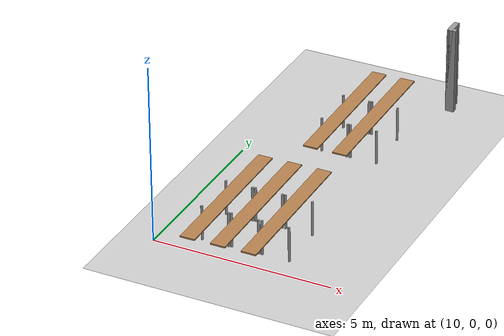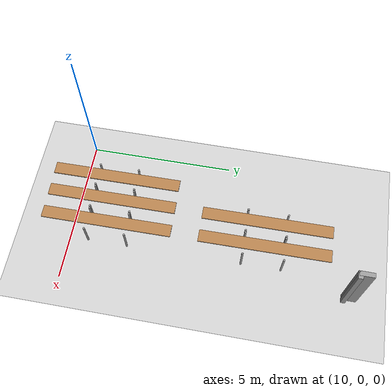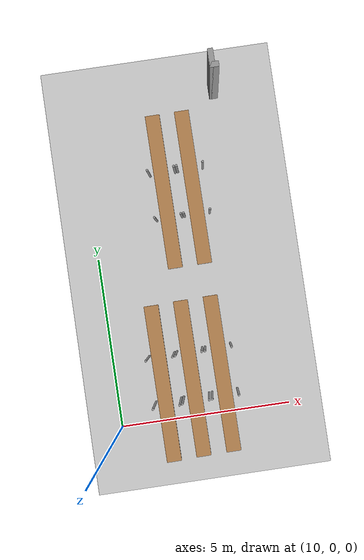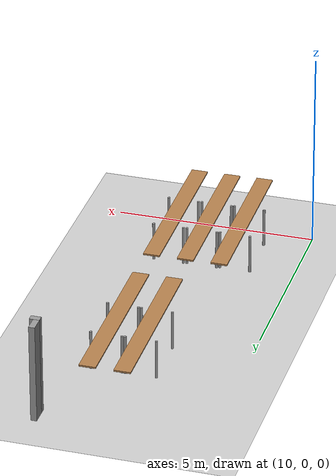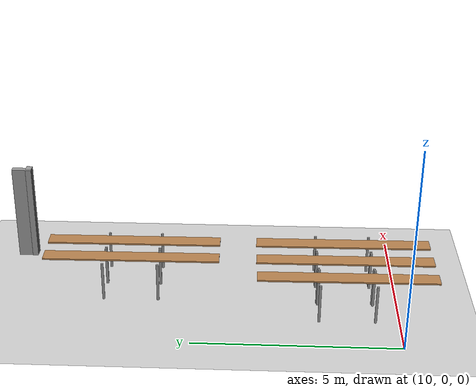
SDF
<sdf version="1.6">
 <world name="default">
  <model name="ground_plane">
   <static>1</static>
   <link name="link">
    <collision name="collision">
     <geometry><plane><normal>0 0 1</normal><size>100 100</size></plane></geometry>
     <surface><friction><ode><mu>100</mu><mu2>50</mu2></ode></friction></surface>
    </collision>
    <visual name="visual">
     <cast_shadows>0</cast_shadows>
     <geometry><plane><normal>0 0 1</normal><size>100 100</size></plane></geometry>
     <material>
      <script><uri>file://media/materials/scripts/gazebo.material</uri><name>Gazebo/Grey</name></script>
     </material>
    </visual>
   </link>
  </model>
  <model name="Parte_DX_(visione_alta_mappa)_CV1">
   <pose>7.84951 -6.02799 0 0 -0 0</pose>
   <link name="Wall_25">
    <collision name="Wall_25_Collision">
     <geometry><box><size>0.25 0.15 2.5</size></box></geometry>
     <pose>0 0 1.25 0 -0 0</pose>
    </collision>
    <visual name="Wall_25_Visual">
     <pose>0 0 1.25 0 -0 0</pose>
     <geometry><box><size>0.25 0.15 2.5</size></box></geometry>
     <material>
      <script><uri>file://media/materials/scripts/gazebo.material</uri><name>Gazebo/Grey</name></script>
      <ambient>1 1 1 1</ambient>
     </material>
    </visual>
    <pose>6.26785 15.4522 0 0 -0 3.14159</pose>
   </link>
   <link name="Wall_27">
    <collision name="Wall_27_Collision">
     <geometry><box><size>0.5 0.15 2.5</size></box></geometry>
     <pose>0 0 1.25 0 -0 0</pose>
    </collision>
    <visual name="Wall_27_Visual">
     <pose>0 0 1.25 0 -0 0</pose>
     <geometry><box><size>0.5 0.15 2.5</size></box></geometry>
     <material>
      <script><uri>file://media/materials/scripts/gazebo.material</uri><name>Gazebo/Grey</name></script>
      <ambient>1 1 1 1</ambient>
     </material>
    </visual>
    <pose>6.21785 15.6272 0 0 -0 1.5708</pose>
   </link>
   <static>1</static>
  </model>
  <model name="tablesclass_clone_15">
   <link name="link">
    <inertial>
     <inertia><ixx>0</ixx><ixy>0</ixy><ixz>0</ixz><iyy>0</iyy><iyz>0</iyz><izz>0</izz></inertia>
     <mass>1.73923</mass>
    </inertial>
    <visual name="front_right_leg">
     <pose>0.68 -0.38 0.5 0 -0 0</pose>
     <geometry><cylinder><radius>0.0324505</radius><length>1</length></cylinder></geometry>
     <material>
      <script><uri>file://media/materials/scripts/gazebo.material</uri><name>Gazebo/Grey</name></script>
      <ambient>0.3 0.3 0.3 1</ambient>
      <diffuse>0.7 0.7 0.7 1</diffuse>
      <specular>0.01 0.01 0.01 1</specular>
      <emissive>0 0 0 1</emissive>
     </material>
    </visual>
    <visual name="back_left_leg">
     <pose>-0.68 0.38 0.5 0 -0 0</pose>
     <geometry><cylinder><radius>0.0324505</radius><length>1</length></cylinder></geometry>
     <material>
      <script><uri>file://media/materials/scripts/gazebo.material</uri><name>Gazebo/Grey</name></script>
      <ambient>0.3 0.3 0.3 1</ambient>
      <diffuse>0.7 0.7 0.7 1</diffuse>
      <specular>0.01 0.01 0.01 1</specular>
      <emissive>0 0 0 1</emissive>
     </material>
    </visual>
    <visual name="front_left_leg">
     <pose>0.68 0.38 0.5 0 -0 0</pose>
     <geometry><cylinder><radius>0.0324505</radius><length>1</length></cylinder></geometry>
     <material>
      <script><uri>file://media/materials/scripts/gazebo.material</uri><name>Gazebo/Grey</name></script>
      <ambient>0.3 0.3 0.3 1</ambient>
      <diffuse>0.7 0.7 0.7 1</diffuse>
      <specular>0.01 0.01 0.01 1</specular>
      <emissive>0 0 0 1</emissive>
     </material>
    </visual>
    <visual name="visual1">
     <pose>0 0 1 0 -0 0</pose>
     <geometry><box><size>4.38513 0.412326 0.04</size></box></geometry>
     <material>
      <script><uri>file://media/materials/scripts/gazebo.material</uri><name>Gazebo/Wood</name></script>
      <ambient>1 1 1 1</ambient>
      <diffuse>1 1 1 1</diffuse>
      <specular>0.2 0.2 0.2 1</specular>
      <emissive>0 0 0 1</emissive>
     </material>
    </visual>
    <visual name="back_right_leg">
     <pose>-0.68 -0.38 0.5 0 -0 0</pose>
     <geometry><cylinder><radius>0.0324505</radius><length>1</length></cylinder></geometry>
     <material>
      <script><uri>file://media/materials/scripts/gazebo.material</uri><name>Gazebo/Grey</name></script>
      <ambient>0.3 0.3 0.3 1</ambient>
      <diffuse>0.7 0.7 0.7 1</diffuse>
      <specular>0.01 0.01 0.01 1</specular>
      <emissive>0 0 0 1</emissive>
     </material>
    </visual>
    <collision name="front_left_leg">
     <pose>0.68 0.38 0.5 0 -0 0</pose>
     <geometry><cylinder><radius>0.03245</radius><length>1</length></cylinder></geometry>
     <surface>
      <friction>
       <ode><mu>1</mu><mu2>1</mu2><fdir1>0 0 0</fdir1><slip1>0</slip1><slip2>0</slip2></ode>
       <torsional>
        <coefficient>1</coefficient>
        <patch_radius>0</patch_radius>
        <surface_radius>0</surface_radius>
        <use_patch_radius>1</use_patch_radius>
        <ode><slip>0</slip></ode>
       </torsional>
      </friction>
      <bounce><restitution_coefficient>0</restitution_coefficient><threshold>1e+06</threshold></bounce>
      <contact>
       <collide_without_contact>0</collide_without_contact>
       <collide_without_contact_bitmask>1</collide_without_contact_bitmask>
       <collide_bitmask>1</collide_bitmask>
       <ode>
        <soft_cfm>0</soft_cfm>
        <soft_erp>0.2</soft_erp>
        <kp>1e+13</kp>
        <kd>1</kd>
        <max_vel>0.01</max_vel>
        <min_depth>0</min_depth>
       </ode>
       <bullet>
        <split_impulse>1</split_impulse>
        <split_impulse_penetration_threshold>-0.01</split_impulse_penetration_threshold>
        <soft_cfm>0</soft_cfm>
        <soft_erp>0.2</soft_erp>
        <kp>1e+13</kp>
        <kd>1</kd>
       </bullet>
      </contact>
     </surface>
    </collision>
    <collision name="front_right_leg">
     <pose>0.68 -0.38 0.5 0 -0 0</pose>
     <geometry><cylinder><radius>0.03245</radius><length>1</length></cylinder></geometry>
     <surface>
      <friction>
       <ode><mu>1</mu><mu2>1</mu2><fdir1>0 0 0</fdir1><slip1>0</slip1><slip2>0</slip2></ode>
       <torsional>
        <coefficient>1</coefficient>
        <patch_radius>0</patch_radius>
        <surface_radius>0</surface_radius>
        <use_patch_radius>1</use_patch_radius>
        <ode><slip>0</slip></ode>
       </torsional>
      </friction>
      <bounce><restitution_coefficient>0</restitution_coefficient><threshold>1e+06</threshold></bounce>
      <contact>
       <collide_without_contact>0</collide_without_contact>
       <collide_without_contact_bitmask>1</collide_without_contact_bitmask>
       <collide_bitmask>1</collide_bitmask>
       <ode>
        <soft_cfm>0</soft_cfm>
        <soft_erp>0.2</soft_erp>
        <kp>1e+13</kp>
        <kd>1</kd>
        <max_vel>0.01</max_vel>
        <min_depth>0</min_depth>
       </ode>
       <bullet>
        <split_impulse>1</split_impulse>
        <split_impulse_penetration_threshold>-0.01</split_impulse_penetration_threshold>
        <soft_cfm>0</soft_cfm>
        <soft_erp>0.2</soft_erp>
        <kp>1e+13</kp>
        <kd>1</kd>
       </bullet>
      </contact>
     </surface>
    </collision>
    <collision name="back_left_leg">
     <pose>-0.68 0.38 0.5 0 -0 0</pose>
     <geometry><cylinder><radius>0.03245</radius><length>1</length></cylinder></geometry>
     <surface>
      <friction>
       <ode><mu>1</mu><mu2>1</mu2><fdir1>0 0 0</fdir1><slip1>0</slip1><slip2>0</slip2></ode>
       <torsional>
        <coefficient>1</coefficient>
        <patch_radius>0</patch_radius>
        <surface_radius>0</surface_radius>
        <use_patch_radius>1</use_patch_radius>
        <ode><slip>0</slip></ode>
       </torsional>
      </friction>
      <bounce><restitution_coefficient>0</restitution_coefficient><threshold>1e+06</threshold></bounce>
      <contact>
       <collide_without_contact>0</collide_without_contact>
       <collide_without_contact_bitmask>1</collide_without_contact_bitmask>
       <collide_bitmask>1</collide_bitmask>
       <ode>
        <soft_cfm>0</soft_cfm>
        <soft_erp>0.2</soft_erp>
        <kp>1e+13</kp>
        <kd>1</kd>
        <max_vel>0.01</max_vel>
        <min_depth>0</min_depth>
       </ode>
       <bullet>
        <split_impulse>1</split_impulse>
        <split_impulse_penetration_threshold>-0.01</split_impulse_penetration_threshold>
        <soft_cfm>0</soft_cfm>
        <soft_erp>0.2</soft_erp>
        <kp>1e+13</kp>
        <kd>1</kd>
       </bullet>
      </contact>
     </surface>
    </collision>
    <collision name="back_right_leg">
     <pose>-0.68 -0.38 0.5 0 -0 0</pose>
     <geometry><cylinder><radius>0.03245</radius><length>1</length></cylinder></geometry>
     <surface>
      <friction>
       <ode><mu>1</mu><mu2>1</mu2><fdir1>0 0 0</fdir1><slip1>0</slip1><slip2>0</slip2></ode>
       <torsional>
        <coefficient>1</coefficient>
        <patch_radius>0</patch_radius>
        <surface_radius>0</surface_radius>
        <use_patch_radius>1</use_patch_radius>
        <ode><slip>0</slip></ode>
       </torsional>
      </friction>
      <bounce><restitution_coefficient>0</restitution_coefficient><threshold>1e+06</threshold></bounce>
      <contact>
       <collide_without_contact>0</collide_without_contact>
       <collide_without_contact_bitmask>1</collide_without_contact_bitmask>
       <collide_bitmask>1</collide_bitmask>
       <ode>
        <soft_cfm>0</soft_cfm>
        <soft_erp>0.2</soft_erp>
        <kp>1e+13</kp>
        <kd>1</kd>
        <max_vel>0.01</max_vel>
        <min_depth>0</min_depth>
       </ode>
       <bullet>
        <split_impulse>1</split_impulse>
        <split_impulse_penetration_threshold>-0.01</split_impulse_penetration_threshold>
        <soft_cfm>0</soft_cfm>
        <soft_erp>0.2</soft_erp>
        <kp>1e+13</kp>
        <kd>1</kd>
       </bullet>
      </contact>
     </surface>
    </collision>
    <collision name="surface">
     <pose>0 0 1 0 -0 0</pose>
     <geometry><box><size>4.69836 0.412326 0.03</size></box></geometry>
     <surface>
      <friction>
       <ode><mu>0.6</mu><mu2>0.6</mu2><fdir1>0 0 0</fdir1><slip1>0</slip1><slip2>0</slip2></ode>
       <torsional>
        <coefficient>1</coefficient>
        <patch_radius>0</patch_radius>
        <surface_radius>0</surface_radius>
        <use_patch_radius>1</use_patch_radius>
        <ode><slip>0</slip></ode>
       </torsional>
      </friction>
      <bounce><restitution_coefficient>0</restitution_coefficient><threshold>1e+06</threshold></bounce>
      <contact>
       <collide_without_contact>0</collide_without_contact>
       <collide_without_contact_bitmask>1</collide_without_contact_bitmask>
       <collide_bitmask>1</collide_bitmask>
       <ode>
        <soft_cfm>0</soft_cfm>
        <soft_erp>0.2</soft_erp>
        <kp>1e+13</kp>
        <kd>1</kd>
        <max_vel>0.01</max_vel>
        <min_depth>0</min_depth>
       </ode>
       <bullet>
        <split_impulse>1</split_impulse>
        <split_impulse_penetration_threshold>-0.01</split_impulse_penetration_threshold>
        <soft_cfm>0</soft_cfm>
        <soft_erp>0.2</soft_erp>
        <kp>1e+13</kp>
        <kd>1</kd>
       </bullet>
      </contact>
     </surface>
    </collision>
   </link>
   <static>0</static>
   <pose>13.1555 1.31057 -1e-06 0 -2e-06 -1.56403</pose>
  </model>
  <model name="tablesclass_clone_16">
   <link name="link">
    <inertial>
     <inertia><ixx>0</ixx><ixy>0</ixy><ixz>0</ixz><iyy>0</iyy><iyz>0</iyz><izz>0</izz></inertia>
     <mass>1.73923</mass>
    </inertial>
    <visual name="front_right_leg">
     <pose>0.68 -0.38 0.5 0 -0 0</pose>
     <geometry><cylinder><radius>0.0324505</radius><length>1</length></cylinder></geometry>
     <material>
      <script><uri>file://media/materials/scripts/gazebo.material</uri><name>Gazebo/Grey</name></script>
      <ambient>0.3 0.3 0.3 1</ambient>
      <diffuse>0.7 0.7 0.7 1</diffuse>
      <specular>0.01 0.01 0.01 1</specular>
      <emissive>0 0 0 1</emissive>
     </material>
    </visual>
    <visual name="back_left_leg">
     <pose>-0.68 0.38 0.5 0 -0 0</pose>
     <geometry><cylinder><radius>0.0324505</radius><length>1</length></cylinder></geometry>
     <material>
      <script><uri>file://media/materials/scripts/gazebo.material</uri><name>Gazebo/Grey</name></script>
      <ambient>0.3 0.3 0.3 1</ambient>
      <diffuse>0.7 0.7 0.7 1</diffuse>
      <specular>0.01 0.01 0.01 1</specular>
      <emissive>0 0 0 1</emissive>
     </material>
    </visual>
    <visual name="front_left_leg">
     <pose>0.68 0.38 0.5 0 -0 0</pose>
     <geometry><cylinder><radius>0.0324505</radius><length>1</length></cylinder></geometry>
     <material>
      <script><uri>file://media/materials/scripts/gazebo.material</uri><name>Gazebo/Grey</name></script>
      <ambient>0.3 0.3 0.3 1</ambient>
      <diffuse>0.7 0.7 0.7 1</diffuse>
      <specular>0.01 0.01 0.01 1</specular>
      <emissive>0 0 0 1</emissive>
     </material>
    </visual>
    <visual name="visual1">
     <pose>0 0 1 0 -0 0</pose>
     <geometry><box><size>4.38513 0.412326 0.04</size></box></geometry>
     <material>
      <script><uri>file://media/materials/scripts/gazebo.material</uri><name>Gazebo/Wood</name></script>
      <ambient>1 1 1 1</ambient>
      <diffuse>1 1 1 1</diffuse>
      <specular>0.2 0.2 0.2 1</specular>
      <emissive>0 0 0 1</emissive>
     </material>
    </visual>
    <visual name="back_right_leg">
     <pose>-0.68 -0.38 0.5 0 -0 0</pose>
     <geometry><cylinder><radius>0.0324505</radius><length>1</length></cylinder></geometry>
     <material>
      <script><uri>file://media/materials/scripts/gazebo.material</uri><name>Gazebo/Grey</name></script>
      <ambient>0.3 0.3 0.3 1</ambient>
      <diffuse>0.7 0.7 0.7 1</diffuse>
      <specular>0.01 0.01 0.01 1</specular>
      <emissive>0 0 0 1</emissive>
     </material>
    </visual>
    <collision name="front_left_leg">
     <pose>0.68 0.38 0.5 0 -0 0</pose>
     <geometry><cylinder><radius>0.03245</radius><length>1</length></cylinder></geometry>
     <surface>
      <friction>
       <ode><mu>1</mu><mu2>1</mu2><fdir1>0 0 0</fdir1><slip1>0</slip1><slip2>0</slip2></ode>
       <torsional>
        <coefficient>1</coefficient>
        <patch_radius>0</patch_radius>
        <surface_radius>0</surface_radius>
        <use_patch_radius>1</use_patch_radius>
        <ode><slip>0</slip></ode>
       </torsional>
      </friction>
      <bounce><restitution_coefficient>0</restitution_coefficient><threshold>1e+06</threshold></bounce>
      <contact>
       <collide_without_contact>0</collide_without_contact>
       <collide_without_contact_bitmask>1</collide_without_contact_bitmask>
       <collide_bitmask>1</collide_bitmask>
       <ode>
        <soft_cfm>0</soft_cfm>
        <soft_erp>0.2</soft_erp>
        <kp>1e+13</kp>
        <kd>1</kd>
        <max_vel>0.01</max_vel>
        <min_depth>0</min_depth>
       </ode>
       <bullet>
        <split_impulse>1</split_impulse>
        <split_impulse_penetration_threshold>-0.01</split_impulse_penetration_threshold>
        <soft_cfm>0</soft_cfm>
        <soft_erp>0.2</soft_erp>
        <kp>1e+13</kp>
        <kd>1</kd>
       </bullet>
      </contact>
     </surface>
    </collision>
    <collision name="front_right_leg">
     <pose>0.68 -0.38 0.5 0 -0 0</pose>
     <geometry><cylinder><radius>0.03245</radius><length>1</length></cylinder></geometry>
     <surface>
      <friction>
       <ode><mu>1</mu><mu2>1</mu2><fdir1>0 0 0</fdir1><slip1>0</slip1><slip2>0</slip2></ode>
       <torsional>
        <coefficient>1</coefficient>
        <patch_radius>0</patch_radius>
        <surface_radius>0</surface_radius>
        <use_patch_radius>1</use_patch_radius>
        <ode><slip>0</slip></ode>
       </torsional>
      </friction>
      <bounce><restitution_coefficient>0</restitution_coefficient><threshold>1e+06</threshold></bounce>
      <contact>
       <collide_without_contact>0</collide_without_contact>
       <collide_without_contact_bitmask>1</collide_without_contact_bitmask>
       <collide_bitmask>1</collide_bitmask>
       <ode>
        <soft_cfm>0</soft_cfm>
        <soft_erp>0.2</soft_erp>
        <kp>1e+13</kp>
        <kd>1</kd>
        <max_vel>0.01</max_vel>
        <min_depth>0</min_depth>
       </ode>
       <bullet>
        <split_impulse>1</split_impulse>
        <split_impulse_penetration_threshold>-0.01</split_impulse_penetration_threshold>
        <soft_cfm>0</soft_cfm>
        <soft_erp>0.2</soft_erp>
        <kp>1e+13</kp>
        <kd>1</kd>
       </bullet>
      </contact>
     </surface>
    </collision>
    <collision name="back_left_leg">
     <pose>-0.68 0.38 0.5 0 -0 0</pose>
     <geometry><cylinder><radius>0.03245</radius><length>1</length></cylinder></geometry>
     <surface>
      <friction>
       <ode><mu>1</mu><mu2>1</mu2><fdir1>0 0 0</fdir1><slip1>0</slip1><slip2>0</slip2></ode>
       <torsional>
        <coefficient>1</coefficient>
        <patch_radius>0</patch_radius>
        <surface_radius>0</surface_radius>
        <use_patch_radius>1</use_patch_radius>
        <ode><slip>0</slip></ode>
       </torsional>
      </friction>
      <bounce><restitution_coefficient>0</restitution_coefficient><threshold>1e+06</threshold></bounce>
      <contact>
       <collide_without_contact>0</collide_without_contact>
       <collide_without_contact_bitmask>1</collide_without_contact_bitmask>
       <collide_bitmask>1</collide_bitmask>
       <ode>
        <soft_cfm>0</soft_cfm>
        <soft_erp>0.2</soft_erp>
        <kp>1e+13</kp>
        <kd>1</kd>
        <max_vel>0.01</max_vel>
        <min_depth>0</min_depth>
       </ode>
       <bullet>
        <split_impulse>1</split_impulse>
        <split_impulse_penetration_threshold>-0.01</split_impulse_penetration_threshold>
        <soft_cfm>0</soft_cfm>
        <soft_erp>0.2</soft_erp>
        <kp>1e+13</kp>
        <kd>1</kd>
       </bullet>
      </contact>
     </surface>
    </collision>
    <collision name="back_right_leg">
     <pose>-0.68 -0.38 0.5 0 -0 0</pose>
     <geometry><cylinder><radius>0.03245</radius><length>1</length></cylinder></geometry>
     <surface>
      <friction>
       <ode><mu>1</mu><mu2>1</mu2><fdir1>0 0 0</fdir1><slip1>0</slip1><slip2>0</slip2></ode>
       <torsional>
        <coefficient>1</coefficient>
        <patch_radius>0</patch_radius>
        <surface_radius>0</surface_radius>
        <use_patch_radius>1</use_patch_radius>
        <ode><slip>0</slip></ode>
       </torsional>
      </friction>
      <bounce><restitution_coefficient>0</restitution_coefficient><threshold>1e+06</threshold></bounce>
      <contact>
       <collide_without_contact>0</collide_without_contact>
       <collide_without_contact_bitmask>1</collide_without_contact_bitmask>
       <collide_bitmask>1</collide_bitmask>
       <ode>
        <soft_cfm>0</soft_cfm>
        <soft_erp>0.2</soft_erp>
        <kp>1e+13</kp>
        <kd>1</kd>
        <max_vel>0.01</max_vel>
        <min_depth>0</min_depth>
       </ode>
       <bullet>
        <split_impulse>1</split_impulse>
        <split_impulse_penetration_threshold>-0.01</split_impulse_penetration_threshold>
        <soft_cfm>0</soft_cfm>
        <soft_erp>0.2</soft_erp>
        <kp>1e+13</kp>
        <kd>1</kd>
       </bullet>
      </contact>
     </surface>
    </collision>
    <collision name="surface">
     <pose>0 0 1 0 -0 0</pose>
     <geometry><box><size>4.69836 0.412326 0.03</size></box></geometry>
     <surface>
      <friction>
       <ode><mu>0.6</mu><mu2>0.6</mu2><fdir1>0 0 0</fdir1><slip1>0</slip1><slip2>0</slip2></ode>
       <torsional>
        <coefficient>1</coefficient>
        <patch_radius>0</patch_radius>
        <surface_radius>0</surface_radius>
        <use_patch_radius>1</use_patch_radius>
        <ode><slip>0</slip></ode>
       </torsional>
      </friction>
      <bounce><restitution_coefficient>0</restitution_coefficient><threshold>1e+06</threshold></bounce>
      <contact>
       <collide_without_contact>0</collide_without_contact>
       <collide_without_contact_bitmask>1</collide_without_contact_bitmask>
       <collide_bitmask>1</collide_bitmask>
       <ode>
        <soft_cfm>0</soft_cfm>
        <soft_erp>0.2</soft_erp>
        <kp>1e+13</kp>
        <kd>1</kd>
        <max_vel>0.01</max_vel>
        <min_depth>0</min_depth>
       </ode>
       <bullet>
        <split_impulse>1</split_impulse>
        <split_impulse_penetration_threshold>-0.01</split_impulse_penetration_threshold>
        <soft_cfm>0</soft_cfm>
        <soft_erp>0.2</soft_erp>
        <kp>1e+13</kp>
        <kd>1</kd>
       </bullet>
      </contact>
     </surface>
    </collision>
   </link>
   <static>0</static>
   <pose>13.1114 6.61415 -2e-06 -0 -3e-06 -1.56394</pose>
  </model>
  <model name="tablesclass_clone_17">
   <link name="link">
    <inertial>
     <inertia><ixx>0</ixx><ixy>0</ixy><ixz>0</ixz><iyy>0</iyy><iyz>0</iyz><izz>0</izz></inertia>
     <mass>1.73923</mass>
    </inertial>
    <visual name="front_right_leg">
     <pose>0.68 -0.38 0.5 0 -0 0</pose>
     <geometry><cylinder><radius>0.0324505</radius><length>1</length></cylinder></geometry>
     <material>
      <script><uri>file://media/materials/scripts/gazebo.material</uri><name>Gazebo/Grey</name></script>
      <ambient>0.3 0.3 0.3 1</ambient>
      <diffuse>0.7 0.7 0.7 1</diffuse>
      <specular>0.01 0.01 0.01 1</specular>
      <emissive>0 0 0 1</emissive>
     </material>
    </visual>
    <visual name="back_left_leg">
     <pose>-0.68 0.38 0.5 0 -0 0</pose>
     <geometry><cylinder><radius>0.0324505</radius><length>1</length></cylinder></geometry>
     <material>
      <script><uri>file://media/materials/scripts/gazebo.material</uri><name>Gazebo/Grey</name></script>
      <ambient>0.3 0.3 0.3 1</ambient>
      <diffuse>0.7 0.7 0.7 1</diffuse>
      <specular>0.01 0.01 0.01 1</specular>
      <emissive>0 0 0 1</emissive>
     </material>
    </visual>
    <visual name="front_left_leg">
     <pose>0.68 0.38 0.5 0 -0 0</pose>
     <geometry><cylinder><radius>0.0324505</radius><length>1</length></cylinder></geometry>
     <material>
      <script><uri>file://media/materials/scripts/gazebo.material</uri><name>Gazebo/Grey</name></script>
      <ambient>0.3 0.3 0.3 1</ambient>
      <diffuse>0.7 0.7 0.7 1</diffuse>
      <specular>0.01 0.01 0.01 1</specular>
      <emissive>0 0 0 1</emissive>
     </material>
    </visual>
    <visual name="visual1">
     <pose>0 0 1 0 -0 0</pose>
     <geometry><box><size>4.38513 0.412326 0.04</size></box></geometry>
     <material>
      <script><uri>file://media/materials/scripts/gazebo.material</uri><name>Gazebo/Wood</name></script>
      <ambient>1 1 1 1</ambient>
      <diffuse>1 1 1 1</diffuse>
      <specular>0.2 0.2 0.2 1</specular>
      <emissive>0 0 0 1</emissive>
     </material>
    </visual>
    <visual name="back_right_leg">
     <pose>-0.68 -0.38 0.5 0 -0 0</pose>
     <geometry><cylinder><radius>0.0324505</radius><length>1</length></cylinder></geometry>
     <material>
      <script><uri>file://media/materials/scripts/gazebo.material</uri><name>Gazebo/Grey</name></script>
      <ambient>0.3 0.3 0.3 1</ambient>
      <diffuse>0.7 0.7 0.7 1</diffuse>
      <specular>0.01 0.01 0.01 1</specular>
      <emissive>0 0 0 1</emissive>
     </material>
    </visual>
    <collision name="front_left_leg">
     <pose>0.68 0.38 0.5 0 -0 0</pose>
     <geometry><cylinder><radius>0.03245</radius><length>1</length></cylinder></geometry>
     <surface>
      <friction>
       <ode><mu>1</mu><mu2>1</mu2><fdir1>0 0 0</fdir1><slip1>0</slip1><slip2>0</slip2></ode>
       <torsional>
        <coefficient>1</coefficient>
        <patch_radius>0</patch_radius>
        <surface_radius>0</surface_radius>
        <use_patch_radius>1</use_patch_radius>
        <ode><slip>0</slip></ode>
       </torsional>
      </friction>
      <bounce><restitution_coefficient>0</restitution_coefficient><threshold>1e+06</threshold></bounce>
      <contact>
       <collide_without_contact>0</collide_without_contact>
       <collide_without_contact_bitmask>1</collide_without_contact_bitmask>
       <collide_bitmask>1</collide_bitmask>
       <ode>
        <soft_cfm>0</soft_cfm>
        <soft_erp>0.2</soft_erp>
        <kp>1e+13</kp>
        <kd>1</kd>
        <max_vel>0.01</max_vel>
        <min_depth>0</min_depth>
       </ode>
       <bullet>
        <split_impulse>1</split_impulse>
        <split_impulse_penetration_threshold>-0.01</split_impulse_penetration_threshold>
        <soft_cfm>0</soft_cfm>
        <soft_erp>0.2</soft_erp>
        <kp>1e+13</kp>
        <kd>1</kd>
       </bullet>
      </contact>
     </surface>
    </collision>
    <collision name="front_right_leg">
     <pose>0.68 -0.38 0.5 0 -0 0</pose>
     <geometry><cylinder><radius>0.03245</radius><length>1</length></cylinder></geometry>
     <surface>
      <friction>
       <ode><mu>1</mu><mu2>1</mu2><fdir1>0 0 0</fdir1><slip1>0</slip1><slip2>0</slip2></ode>
       <torsional>
        <coefficient>1</coefficient>
        <patch_radius>0</patch_radius>
        <surface_radius>0</surface_radius>
        <use_patch_radius>1</use_patch_radius>
        <ode><slip>0</slip></ode>
       </torsional>
      </friction>
      <bounce><restitution_coefficient>0</restitution_coefficient><threshold>1e+06</threshold></bounce>
      <contact>
       <collide_without_contact>0</collide_without_contact>
       <collide_without_contact_bitmask>1</collide_without_contact_bitmask>
       <collide_bitmask>1</collide_bitmask>
       <ode>
        <soft_cfm>0</soft_cfm>
        <soft_erp>0.2</soft_erp>
        <kp>1e+13</kp>
        <kd>1</kd>
        <max_vel>0.01</max_vel>
        <min_depth>0</min_depth>
       </ode>
       <bullet>
        <split_impulse>1</split_impulse>
        <split_impulse_penetration_threshold>-0.01</split_impulse_penetration_threshold>
        <soft_cfm>0</soft_cfm>
        <soft_erp>0.2</soft_erp>
        <kp>1e+13</kp>
        <kd>1</kd>
       </bullet>
      </contact>
     </surface>
    </collision>
    <collision name="back_left_leg">
     <pose>-0.68 0.38 0.5 0 -0 0</pose>
     <geometry><cylinder><radius>0.03245</radius><length>1</length></cylinder></geometry>
     <surface>
      <friction>
       <ode><mu>1</mu><mu2>1</mu2><fdir1>0 0 0</fdir1><slip1>0</slip1><slip2>0</slip2></ode>
       <torsional>
        <coefficient>1</coefficient>
        <patch_radius>0</patch_radius>
        <surface_radius>0</surface_radius>
        <use_patch_radius>1</use_patch_radius>
        <ode><slip>0</slip></ode>
       </torsional>
      </friction>
      <bounce><restitution_coefficient>0</restitution_coefficient><threshold>1e+06</threshold></bounce>
      <contact>
       <collide_without_contact>0</collide_without_contact>
       <collide_without_contact_bitmask>1</collide_without_contact_bitmask>
       <collide_bitmask>1</collide_bitmask>
       <ode>
        <soft_cfm>0</soft_cfm>
        <soft_erp>0.2</soft_erp>
        <kp>1e+13</kp>
        <kd>1</kd>
        <max_vel>0.01</max_vel>
        <min_depth>0</min_depth>
       </ode>
       <bullet>
        <split_impulse>1</split_impulse>
        <split_impulse_penetration_threshold>-0.01</split_impulse_penetration_threshold>
        <soft_cfm>0</soft_cfm>
        <soft_erp>0.2</soft_erp>
        <kp>1e+13</kp>
        <kd>1</kd>
       </bullet>
      </contact>
     </surface>
    </collision>
    <collision name="back_right_leg">
     <pose>-0.68 -0.38 0.5 0 -0 0</pose>
     <geometry><cylinder><radius>0.03245</radius><length>1</length></cylinder></geometry>
     <surface>
      <friction>
       <ode><mu>1</mu><mu2>1</mu2><fdir1>0 0 0</fdir1><slip1>0</slip1><slip2>0</slip2></ode>
       <torsional>
        <coefficient>1</coefficient>
        <patch_radius>0</patch_radius>
        <surface_radius>0</surface_radius>
        <use_patch_radius>1</use_patch_radius>
        <ode><slip>0</slip></ode>
       </torsional>
      </friction>
      <bounce><restitution_coefficient>0</restitution_coefficient><threshold>1e+06</threshold></bounce>
      <contact>
       <collide_without_contact>0</collide_without_contact>
       <collide_without_contact_bitmask>1</collide_without_contact_bitmask>
       <collide_bitmask>1</collide_bitmask>
       <ode>
        <soft_cfm>0</soft_cfm>
        <soft_erp>0.2</soft_erp>
        <kp>1e+13</kp>
        <kd>1</kd>
        <max_vel>0.01</max_vel>
        <min_depth>0</min_depth>
       </ode>
       <bullet>
        <split_impulse>1</split_impulse>
        <split_impulse_penetration_threshold>-0.01</split_impulse_penetration_threshold>
        <soft_cfm>0</soft_cfm>
        <soft_erp>0.2</soft_erp>
        <kp>1e+13</kp>
        <kd>1</kd>
       </bullet>
      </contact>
     </surface>
    </collision>
    <collision name="surface">
     <pose>0 0 1 0 -0 0</pose>
     <geometry><box><size>4.69836 0.412326 0.03</size></box></geometry>
     <surface>
      <friction>
       <ode><mu>0.6</mu><mu2>0.6</mu2><fdir1>0 0 0</fdir1><slip1>0</slip1><slip2>0</slip2></ode>
       <torsional>
        <coefficient>1</coefficient>
        <patch_radius>0</patch_radius>
        <surface_radius>0</surface_radius>
        <use_patch_radius>1</use_patch_radius>
        <ode><slip>0</slip></ode>
       </torsional>
      </friction>
      <bounce><restitution_coefficient>0</restitution_coefficient><threshold>1e+06</threshold></bounce>
      <contact>
       <collide_without_contact>0</collide_without_contact>
       <collide_without_contact_bitmask>1</collide_without_contact_bitmask>
       <collide_bitmask>1</collide_bitmask>
       <ode>
        <soft_cfm>0</soft_cfm>
        <soft_erp>0.2</soft_erp>
        <kp>1e+13</kp>
        <kd>1</kd>
        <max_vel>0.01</max_vel>
        <min_depth>0</min_depth>
       </ode>
       <bullet>
        <split_impulse>1</split_impulse>
        <split_impulse_penetration_threshold>-0.01</split_impulse_penetration_threshold>
        <soft_cfm>0</soft_cfm>
        <soft_erp>0.2</soft_erp>
        <kp>1e+13</kp>
        <kd>1</kd>
       </bullet>
      </contact>
     </surface>
    </collision>
   </link>
   <static>0</static>
   <pose>12.3078 1.29676 -2e-06 0 3e-06 -1.56391</pose>
  </model>
  <model name="tablesclass_clone_18">
   <link name="link">
    <inertial>
     <inertia><ixx>0</ixx><ixy>0</ixy><ixz>0</ixz><iyy>0</iyy><iyz>0</iyz><izz>0</izz></inertia>
     <mass>1.73923</mass>
    </inertial>
    <visual name="front_right_leg">
     <pose>0.68 -0.38 0.5 0 -0 0</pose>
     <geometry><cylinder><radius>0.0324505</radius><length>1</length></cylinder></geometry>
     <material>
      <script><uri>file://media/materials/scripts/gazebo.material</uri><name>Gazebo/Grey</name></script>
      <ambient>0.3 0.3 0.3 1</ambient>
      <diffuse>0.7 0.7 0.7 1</diffuse>
      <specular>0.01 0.01 0.01 1</specular>
      <emissive>0 0 0 1</emissive>
     </material>
    </visual>
    <visual name="back_left_leg">
     <pose>-0.68 0.38 0.5 0 -0 0</pose>
     <geometry><cylinder><radius>0.0324505</radius><length>1</length></cylinder></geometry>
     <material>
      <script><uri>file://media/materials/scripts/gazebo.material</uri><name>Gazebo/Grey</name></script>
      <ambient>0.3 0.3 0.3 1</ambient>
      <diffuse>0.7 0.7 0.7 1</diffuse>
      <specular>0.01 0.01 0.01 1</specular>
      <emissive>0 0 0 1</emissive>
     </material>
    </visual>
    <visual name="front_left_leg">
     <pose>0.68 0.38 0.5 0 -0 0</pose>
     <geometry><cylinder><radius>0.0324505</radius><length>1</length></cylinder></geometry>
     <material>
      <script><uri>file://media/materials/scripts/gazebo.material</uri><name>Gazebo/Grey</name></script>
      <ambient>0.3 0.3 0.3 1</ambient>
      <diffuse>0.7 0.7 0.7 1</diffuse>
      <specular>0.01 0.01 0.01 1</specular>
      <emissive>0 0 0 1</emissive>
     </material>
    </visual>
    <visual name="visual1">
     <pose>0 0 1 0 -0 0</pose>
     <geometry><box><size>4.38513 0.412326 0.04</size></box></geometry>
     <material>
      <script><uri>file://media/materials/scripts/gazebo.material</uri><name>Gazebo/Wood</name></script>
      <ambient>1 1 1 1</ambient>
      <diffuse>1 1 1 1</diffuse>
      <specular>0.2 0.2 0.2 1</specular>
      <emissive>0 0 0 1</emissive>
     </material>
    </visual>
    <visual name="back_right_leg">
     <pose>-0.68 -0.38 0.5 0 -0 0</pose>
     <geometry><cylinder><radius>0.0324505</radius><length>1</length></cylinder></geometry>
     <material>
      <script><uri>file://media/materials/scripts/gazebo.material</uri><name>Gazebo/Grey</name></script>
      <ambient>0.3 0.3 0.3 1</ambient>
      <diffuse>0.7 0.7 0.7 1</diffuse>
      <specular>0.01 0.01 0.01 1</specular>
      <emissive>0 0 0 1</emissive>
     </material>
    </visual>
    <collision name="front_left_leg">
     <pose>0.68 0.38 0.5 0 -0 0</pose>
     <geometry><cylinder><radius>0.03245</radius><length>1</length></cylinder></geometry>
     <surface>
      <friction>
       <ode><mu>1</mu><mu2>1</mu2><fdir1>0 0 0</fdir1><slip1>0</slip1><slip2>0</slip2></ode>
       <torsional>
        <coefficient>1</coefficient>
        <patch_radius>0</patch_radius>
        <surface_radius>0</surface_radius>
        <use_patch_radius>1</use_patch_radius>
        <ode><slip>0</slip></ode>
       </torsional>
      </friction>
      <bounce><restitution_coefficient>0</restitution_coefficient><threshold>1e+06</threshold></bounce>
      <contact>
       <collide_without_contact>0</collide_without_contact>
       <collide_without_contact_bitmask>1</collide_without_contact_bitmask>
       <collide_bitmask>1</collide_bitmask>
       <ode>
        <soft_cfm>0</soft_cfm>
        <soft_erp>0.2</soft_erp>
        <kp>1e+13</kp>
        <kd>1</kd>
        <max_vel>0.01</max_vel>
        <min_depth>0</min_depth>
       </ode>
       <bullet>
        <split_impulse>1</split_impulse>
        <split_impulse_penetration_threshold>-0.01</split_impulse_penetration_threshold>
        <soft_cfm>0</soft_cfm>
        <soft_erp>0.2</soft_erp>
        <kp>1e+13</kp>
        <kd>1</kd>
       </bullet>
      </contact>
     </surface>
    </collision>
    <collision name="front_right_leg">
     <pose>0.68 -0.38 0.5 0 -0 0</pose>
     <geometry><cylinder><radius>0.03245</radius><length>1</length></cylinder></geometry>
     <surface>
      <friction>
       <ode><mu>1</mu><mu2>1</mu2><fdir1>0 0 0</fdir1><slip1>0</slip1><slip2>0</slip2></ode>
       <torsional>
        <coefficient>1</coefficient>
        <patch_radius>0</patch_radius>
        <surface_radius>0</surface_radius>
        <use_patch_radius>1</use_patch_radius>
        <ode><slip>0</slip></ode>
       </torsional>
      </friction>
      <bounce><restitution_coefficient>0</restitution_coefficient><threshold>1e+06</threshold></bounce>
      <contact>
       <collide_without_contact>0</collide_without_contact>
       <collide_without_contact_bitmask>1</collide_without_contact_bitmask>
       <collide_bitmask>1</collide_bitmask>
       <ode>
        <soft_cfm>0</soft_cfm>
        <soft_erp>0.2</soft_erp>
        <kp>1e+13</kp>
        <kd>1</kd>
        <max_vel>0.01</max_vel>
        <min_depth>0</min_depth>
       </ode>
       <bullet>
        <split_impulse>1</split_impulse>
        <split_impulse_penetration_threshold>-0.01</split_impulse_penetration_threshold>
        <soft_cfm>0</soft_cfm>
        <soft_erp>0.2</soft_erp>
        <kp>1e+13</kp>
        <kd>1</kd>
       </bullet>
      </contact>
     </surface>
    </collision>
    <collision name="back_left_leg">
     <pose>-0.68 0.38 0.5 0 -0 0</pose>
     <geometry><cylinder><radius>0.03245</radius><length>1</length></cylinder></geometry>
     <surface>
      <friction>
       <ode><mu>1</mu><mu2>1</mu2><fdir1>0 0 0</fdir1><slip1>0</slip1><slip2>0</slip2></ode>
       <torsional>
        <coefficient>1</coefficient>
        <patch_radius>0</patch_radius>
        <surface_radius>0</surface_radius>
        <use_patch_radius>1</use_patch_radius>
        <ode><slip>0</slip></ode>
       </torsional>
      </friction>
      <bounce><restitution_coefficient>0</restitution_coefficient><threshold>1e+06</threshold></bounce>
      <contact>
       <collide_without_contact>0</collide_without_contact>
       <collide_without_contact_bitmask>1</collide_without_contact_bitmask>
       <collide_bitmask>1</collide_bitmask>
       <ode>
        <soft_cfm>0</soft_cfm>
        <soft_erp>0.2</soft_erp>
        <kp>1e+13</kp>
        <kd>1</kd>
        <max_vel>0.01</max_vel>
        <min_depth>0</min_depth>
       </ode>
       <bullet>
        <split_impulse>1</split_impulse>
        <split_impulse_penetration_threshold>-0.01</split_impulse_penetration_threshold>
        <soft_cfm>0</soft_cfm>
        <soft_erp>0.2</soft_erp>
        <kp>1e+13</kp>
        <kd>1</kd>
       </bullet>
      </contact>
     </surface>
    </collision>
    <collision name="back_right_leg">
     <pose>-0.68 -0.38 0.5 0 -0 0</pose>
     <geometry><cylinder><radius>0.03245</radius><length>1</length></cylinder></geometry>
     <surface>
      <friction>
       <ode><mu>1</mu><mu2>1</mu2><fdir1>0 0 0</fdir1><slip1>0</slip1><slip2>0</slip2></ode>
       <torsional>
        <coefficient>1</coefficient>
        <patch_radius>0</patch_radius>
        <surface_radius>0</surface_radius>
        <use_patch_radius>1</use_patch_radius>
        <ode><slip>0</slip></ode>
       </torsional>
      </friction>
      <bounce><restitution_coefficient>0</restitution_coefficient><threshold>1e+06</threshold></bounce>
      <contact>
       <collide_without_contact>0</collide_without_contact>
       <collide_without_contact_bitmask>1</collide_without_contact_bitmask>
       <collide_bitmask>1</collide_bitmask>
       <ode>
        <soft_cfm>0</soft_cfm>
        <soft_erp>0.2</soft_erp>
        <kp>1e+13</kp>
        <kd>1</kd>
        <max_vel>0.01</max_vel>
        <min_depth>0</min_depth>
       </ode>
       <bullet>
        <split_impulse>1</split_impulse>
        <split_impulse_penetration_threshold>-0.01</split_impulse_penetration_threshold>
        <soft_cfm>0</soft_cfm>
        <soft_erp>0.2</soft_erp>
        <kp>1e+13</kp>
        <kd>1</kd>
       </bullet>
      </contact>
     </surface>
    </collision>
    <collision name="surface">
     <pose>0 0 1 0 -0 0</pose>
     <geometry><box><size>4.69836 0.412326 0.03</size></box></geometry>
     <surface>
      <friction>
       <ode><mu>0.6</mu><mu2>0.6</mu2><fdir1>0 0 0</fdir1><slip1>0</slip1><slip2>0</slip2></ode>
       <torsional>
        <coefficient>1</coefficient>
        <patch_radius>0</patch_radius>
        <surface_radius>0</surface_radius>
        <use_patch_radius>1</use_patch_radius>
        <ode><slip>0</slip></ode>
       </torsional>
      </friction>
      <bounce><restitution_coefficient>0</restitution_coefficient><threshold>1e+06</threshold></bounce>
      <contact>
       <collide_without_contact>0</collide_without_contact>
       <collide_without_contact_bitmask>1</collide_without_contact_bitmask>
       <collide_bitmask>1</collide_bitmask>
       <ode>
        <soft_cfm>0</soft_cfm>
        <soft_erp>0.2</soft_erp>
        <kp>1e+13</kp>
        <kd>1</kd>
        <max_vel>0.01</max_vel>
        <min_depth>0</min_depth>
       </ode>
       <bullet>
        <split_impulse>1</split_impulse>
        <split_impulse_penetration_threshold>-0.01</split_impulse_penetration_threshold>
        <soft_cfm>0</soft_cfm>
        <soft_erp>0.2</soft_erp>
        <kp>1e+13</kp>
        <kd>1</kd>
       </bullet>
      </contact>
     </surface>
    </collision>
   </link>
   <static>0</static>
   <pose>12.2753 6.60352 -2e-06 0 3e-06 -1.56371</pose>
  </model>
  <model name="tablesclass_clone_19">
   <link name="link">
    <inertial>
     <inertia><ixx>0</ixx><ixy>0</ixy><ixz>0</ixz><iyy>0</iyy><iyz>0</iyz><izz>0</izz></inertia>
     <mass>1.73923</mass>
    </inertial>
    <visual name="front_right_leg">
     <pose>0.68 -0.38 0.5 0 -0 0</pose>
     <geometry><cylinder><radius>0.0324505</radius><length>1</length></cylinder></geometry>
     <material>
      <script><uri>file://media/materials/scripts/gazebo.material</uri><name>Gazebo/Grey</name></script>
      <ambient>0.3 0.3 0.3 1</ambient>
      <diffuse>0.7 0.7 0.7 1</diffuse>
      <specular>0.01 0.01 0.01 1</specular>
      <emissive>0 0 0 1</emissive>
     </material>
    </visual>
    <visual name="back_left_leg">
     <pose>-0.68 0.38 0.5 0 -0 0</pose>
     <geometry><cylinder><radius>0.0324505</radius><length>1</length></cylinder></geometry>
     <material>
      <script><uri>file://media/materials/scripts/gazebo.material</uri><name>Gazebo/Grey</name></script>
      <ambient>0.3 0.3 0.3 1</ambient>
      <diffuse>0.7 0.7 0.7 1</diffuse>
      <specular>0.01 0.01 0.01 1</specular>
      <emissive>0 0 0 1</emissive>
     </material>
    </visual>
    <visual name="front_left_leg">
     <pose>0.68 0.38 0.5 0 -0 0</pose>
     <geometry><cylinder><radius>0.0324505</radius><length>1</length></cylinder></geometry>
     <material>
      <script><uri>file://media/materials/scripts/gazebo.material</uri><name>Gazebo/Grey</name></script>
      <ambient>0.3 0.3 0.3 1</ambient>
      <diffuse>0.7 0.7 0.7 1</diffuse>
      <specular>0.01 0.01 0.01 1</specular>
      <emissive>0 0 0 1</emissive>
     </material>
    </visual>
    <visual name="visual1">
     <pose>0 0 1 0 -0 0</pose>
     <geometry><box><size>4.38513 0.412326 0.04</size></box></geometry>
     <material>
      <script><uri>file://media/materials/scripts/gazebo.material</uri><name>Gazebo/Wood</name></script>
      <ambient>1 1 1 1</ambient>
      <diffuse>1 1 1 1</diffuse>
      <specular>0.2 0.2 0.2 1</specular>
      <emissive>0 0 0 1</emissive>
     </material>
    </visual>
    <visual name="back_right_leg">
     <pose>-0.68 -0.38 0.5 0 -0 0</pose>
     <geometry><cylinder><radius>0.0324505</radius><length>1</length></cylinder></geometry>
     <material>
      <script><uri>file://media/materials/scripts/gazebo.material</uri><name>Gazebo/Grey</name></script>
      <ambient>0.3 0.3 0.3 1</ambient>
      <diffuse>0.7 0.7 0.7 1</diffuse>
      <specular>0.01 0.01 0.01 1</specular>
      <emissive>0 0 0 1</emissive>
     </material>
    </visual>
    <collision name="front_left_leg">
     <pose>0.68 0.38 0.5 0 -0 0</pose>
     <geometry><cylinder><radius>0.03245</radius><length>1</length></cylinder></geometry>
     <surface>
      <friction>
       <ode><mu>1</mu><mu2>1</mu2><fdir1>0 0 0</fdir1><slip1>0</slip1><slip2>0</slip2></ode>
       <torsional>
        <coefficient>1</coefficient>
        <patch_radius>0</patch_radius>
        <surface_radius>0</surface_radius>
        <use_patch_radius>1</use_patch_radius>
        <ode><slip>0</slip></ode>
       </torsional>
      </friction>
      <bounce><restitution_coefficient>0</restitution_coefficient><threshold>1e+06</threshold></bounce>
      <contact>
       <collide_without_contact>0</collide_without_contact>
       <collide_without_contact_bitmask>1</collide_without_contact_bitmask>
       <collide_bitmask>1</collide_bitmask>
       <ode>
        <soft_cfm>0</soft_cfm>
        <soft_erp>0.2</soft_erp>
        <kp>1e+13</kp>
        <kd>1</kd>
        <max_vel>0.01</max_vel>
        <min_depth>0</min_depth>
       </ode>
       <bullet>
        <split_impulse>1</split_impulse>
        <split_impulse_penetration_threshold>-0.01</split_impulse_penetration_threshold>
        <soft_cfm>0</soft_cfm>
        <soft_erp>0.2</soft_erp>
        <kp>1e+13</kp>
        <kd>1</kd>
       </bullet>
      </contact>
     </surface>
    </collision>
    <collision name="front_right_leg">
     <pose>0.68 -0.38 0.5 0 -0 0</pose>
     <geometry><cylinder><radius>0.03245</radius><length>1</length></cylinder></geometry>
     <surface>
      <friction>
       <ode><mu>1</mu><mu2>1</mu2><fdir1>0 0 0</fdir1><slip1>0</slip1><slip2>0</slip2></ode>
       <torsional>
        <coefficient>1</coefficient>
        <patch_radius>0</patch_radius>
        <surface_radius>0</surface_radius>
        <use_patch_radius>1</use_patch_radius>
        <ode><slip>0</slip></ode>
       </torsional>
      </friction>
      <bounce><restitution_coefficient>0</restitution_coefficient><threshold>1e+06</threshold></bounce>
      <contact>
       <collide_without_contact>0</collide_without_contact>
       <collide_without_contact_bitmask>1</collide_without_contact_bitmask>
       <collide_bitmask>1</collide_bitmask>
       <ode>
        <soft_cfm>0</soft_cfm>
        <soft_erp>0.2</soft_erp>
        <kp>1e+13</kp>
        <kd>1</kd>
        <max_vel>0.01</max_vel>
        <min_depth>0</min_depth>
       </ode>
       <bullet>
        <split_impulse>1</split_impulse>
        <split_impulse_penetration_threshold>-0.01</split_impulse_penetration_threshold>
        <soft_cfm>0</soft_cfm>
        <soft_erp>0.2</soft_erp>
        <kp>1e+13</kp>
        <kd>1</kd>
       </bullet>
      </contact>
     </surface>
    </collision>
    <collision name="back_left_leg">
     <pose>-0.68 0.38 0.5 0 -0 0</pose>
     <geometry><cylinder><radius>0.03245</radius><length>1</length></cylinder></geometry>
     <surface>
      <friction>
       <ode><mu>1</mu><mu2>1</mu2><fdir1>0 0 0</fdir1><slip1>0</slip1><slip2>0</slip2></ode>
       <torsional>
        <coefficient>1</coefficient>
        <patch_radius>0</patch_radius>
        <surface_radius>0</surface_radius>
        <use_patch_radius>1</use_patch_radius>
        <ode><slip>0</slip></ode>
       </torsional>
      </friction>
      <bounce><restitution_coefficient>0</restitution_coefficient><threshold>1e+06</threshold></bounce>
      <contact>
       <collide_without_contact>0</collide_without_contact>
       <collide_without_contact_bitmask>1</collide_without_contact_bitmask>
       <collide_bitmask>1</collide_bitmask>
       <ode>
        <soft_cfm>0</soft_cfm>
        <soft_erp>0.2</soft_erp>
        <kp>1e+13</kp>
        <kd>1</kd>
        <max_vel>0.01</max_vel>
        <min_depth>0</min_depth>
       </ode>
       <bullet>
        <split_impulse>1</split_impulse>
        <split_impulse_penetration_threshold>-0.01</split_impulse_penetration_threshold>
        <soft_cfm>0</soft_cfm>
        <soft_erp>0.2</soft_erp>
        <kp>1e+13</kp>
        <kd>1</kd>
       </bullet>
      </contact>
     </surface>
    </collision>
    <collision name="back_right_leg">
     <pose>-0.68 -0.38 0.5 0 -0 0</pose>
     <geometry><cylinder><radius>0.03245</radius><length>1</length></cylinder></geometry>
     <surface>
      <friction>
       <ode><mu>1</mu><mu2>1</mu2><fdir1>0 0 0</fdir1><slip1>0</slip1><slip2>0</slip2></ode>
       <torsional>
        <coefficient>1</coefficient>
        <patch_radius>0</patch_radius>
        <surface_radius>0</surface_radius>
        <use_patch_radius>1</use_patch_radius>
        <ode><slip>0</slip></ode>
       </torsional>
      </friction>
      <bounce><restitution_coefficient>0</restitution_coefficient><threshold>1e+06</threshold></bounce>
      <contact>
       <collide_without_contact>0</collide_without_contact>
       <collide_without_contact_bitmask>1</collide_without_contact_bitmask>
       <collide_bitmask>1</collide_bitmask>
       <ode>
        <soft_cfm>0</soft_cfm>
        <soft_erp>0.2</soft_erp>
        <kp>1e+13</kp>
        <kd>1</kd>
        <max_vel>0.01</max_vel>
        <min_depth>0</min_depth>
       </ode>
       <bullet>
        <split_impulse>1</split_impulse>
        <split_impulse_penetration_threshold>-0.01</split_impulse_penetration_threshold>
        <soft_cfm>0</soft_cfm>
        <soft_erp>0.2</soft_erp>
        <kp>1e+13</kp>
        <kd>1</kd>
       </bullet>
      </contact>
     </surface>
    </collision>
    <collision name="surface">
     <pose>0 0 1 0 -0 0</pose>
     <geometry><box><size>4.69836 0.412326 0.03</size></box></geometry>
     <surface>
      <friction>
       <ode><mu>0.6</mu><mu2>0.6</mu2><fdir1>0 0 0</fdir1><slip1>0</slip1><slip2>0</slip2></ode>
       <torsional>
        <coefficient>1</coefficient>
        <patch_radius>0</patch_radius>
        <surface_radius>0</surface_radius>
        <use_patch_radius>1</use_patch_radius>
        <ode><slip>0</slip></ode>
       </torsional>
      </friction>
      <bounce><restitution_coefficient>0</restitution_coefficient><threshold>1e+06</threshold></bounce>
      <contact>
       <collide_without_contact>0</collide_without_contact>
       <collide_without_contact_bitmask>1</collide_without_contact_bitmask>
       <collide_bitmask>1</collide_bitmask>
       <ode>
        <soft_cfm>0</soft_cfm>
        <soft_erp>0.2</soft_erp>
        <kp>1e+13</kp>
        <kd>1</kd>
        <max_vel>0.01</max_vel>
        <min_depth>0</min_depth>
       </ode>
       <bullet>
        <split_impulse>1</split_impulse>
        <split_impulse_penetration_threshold>-0.01</split_impulse_penetration_threshold>
        <soft_cfm>0</soft_cfm>
        <soft_erp>0.2</soft_erp>
        <kp>1e+13</kp>
        <kd>1</kd>
       </bullet>
      </contact>
     </surface>
    </collision>
   </link>
   <static>0</static>
   <pose>11.4707 1.27095 -2e-06 -0 -3e-06 -1.56377</pose>
  </model>
 </world>
</sdf>
